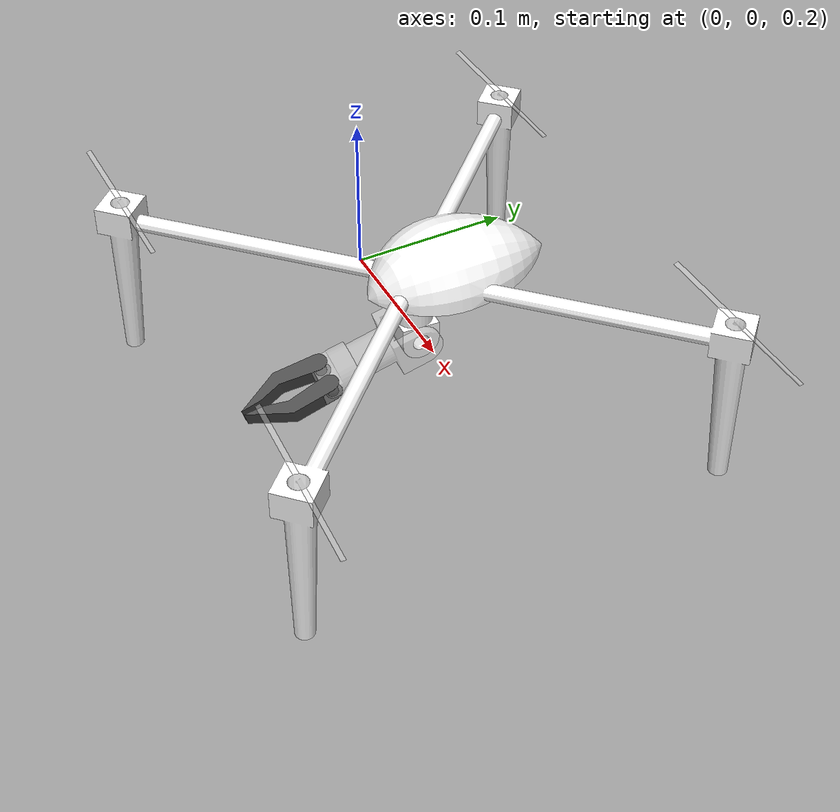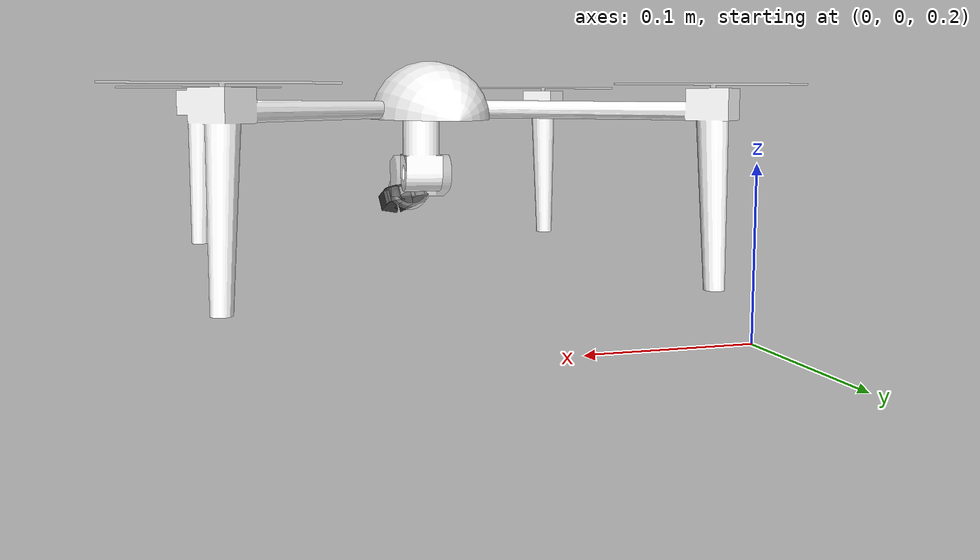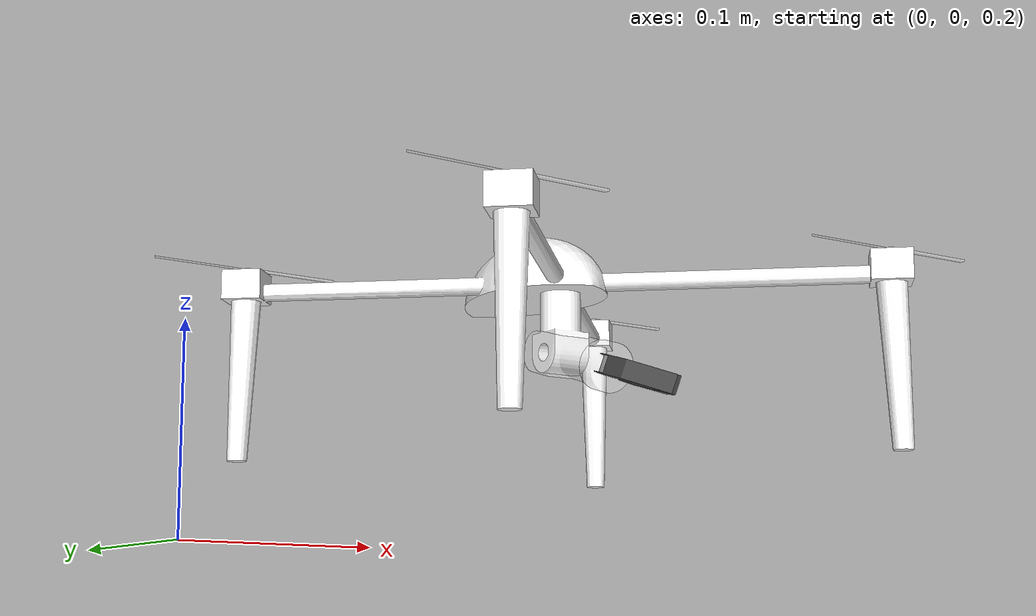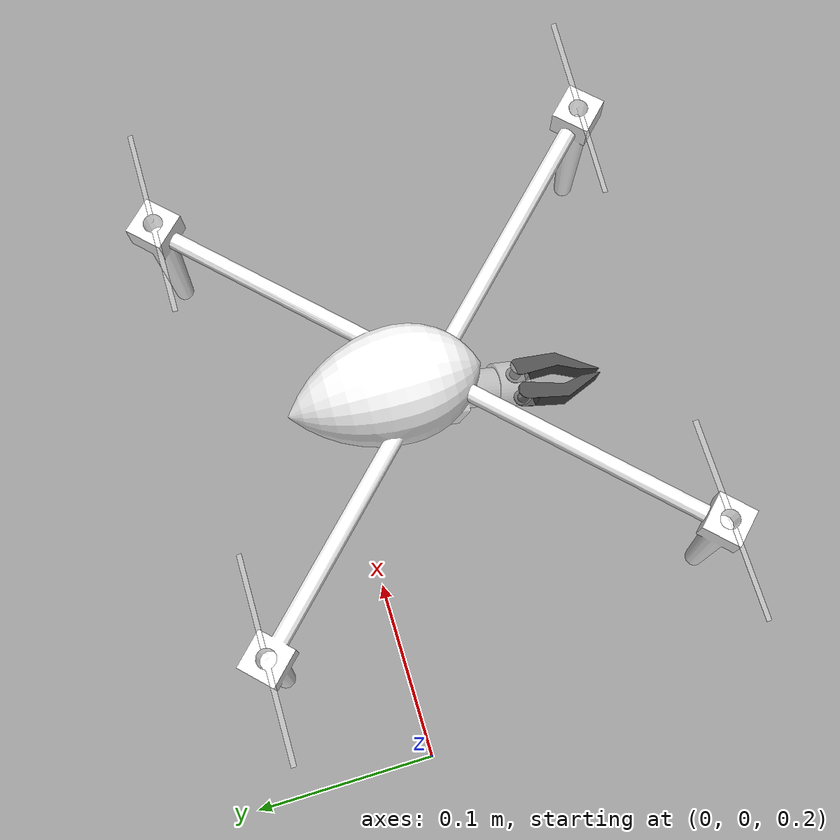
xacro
<?xml version="1.0"?>
<!-- Name your robot here -->
<robot name ="build_quad_bot" xmlns:xacro="http://wiki.ros.org/xacro">

	<xacro:include filename="$(find build_quad_bot)/urdf/build_quad_bot.urdf"/>

	<!--  Gazebo plugin for control here is already added for you -->
	<gazebo>
		<plugin name="gazebo_ros_control" filename="libgazebo_ros_control.so">
			<robotNamespace>/build_quad_bot</robotNamespace>
			<robotSimType>gazebo_ros_control/DefaultRobotHWSim</robotSimType>
			<legacyModeNS>true</legacyModeNS>
		</plugin>
	</gazebo>

</robot>

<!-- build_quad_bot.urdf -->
<robot
  name="build_quad_bot">
  <link name="dummy_link"></link>
    <joint
      name="dummy_joint"
      type="fixed">
      <origin
        xyz="0.0876850301013811 0.140930562484149 0.183057667225338"
        rpy="0 0 0" />
      <parent
        link="dummy_link" />
      <child
        link="chassis" />
    </joint>
  <link
    name="chassis">
    <inertial>
      <origin
        xyz="0.0876850301013811 0.140930562484149 0.183057667225338"
        rpy="0 0 0" />
      <mass
        value="0.173805362488558" />
      <inertia
        ixx="0.00106921691811417"
        ixy="-1.35887791349452E-09"
        ixz="-1.52269854390182E-09"
        iyy="0.00192269791562951"
        iyz="2.09539461739173E-05"
        izz="0.00102907706280709" />
    </inertial>
    <visual>
      <origin
        xyz="0 0 0"
        rpy="0 0 0" />
      <geometry>
        <mesh
          filename="package://build_quad_bot/meshes/chassis.STL" />
      </geometry>
      <material
        name="">
        <color
          rgba="1 1 1 1" />
      </material>
    </visual>
    <collision>
      <origin
        xyz="0 0 0"
        rpy="0 0 0" />
      <geometry>
        <mesh
          filename="package://build_quad_bot/meshes/chassis.STL" />
      </geometry>
    </collision>
  </link>
  <link
    name="front_right_rotor">
    <inertial>
      <origin
        xyz="-1.25975532783151E-09 0.00758907041283063 -1.43444806033344E-09"
        rpy="0 0 0" />
      <mass
        value="0.00164003513463875" />
      <inertia
        ixx="5.40989448385698E-08"
        ixy="1.62773458690548E-14"
        ixz="-1.39327498484125E-09"
        iyy="1.34862675290348E-07"
        iyz="1.20433157779553E-14"
        izz="1.65487904386226E-07" />
    </inertial>
    <visual>
      <origin
        xyz="0 0 0"
        rpy="0 0 0" />
      <geometry>
        <mesh
          filename="package://build_quad_bot/meshes/front_right_rotor.STL" />
      </geometry>
      <material
        name="">
        <color
          rgba="1 1 1 0.32" />
      </material>
    </visual>
    <collision>
      <origin
        xyz="0 0 0"
        rpy="0 0 0" />
      <geometry>
        <mesh
          filename="package://build_quad_bot/meshes/front_right_rotor.STL" />
      </geometry>
    </collision>
  </link>
  <joint
    name="front_right_rotor_joint"
    type="continuous">
    <origin
      xyz="-0.025452 -0.30639 0.14234"
      rpy="1.5708 0 0" />
    <parent
      link="chassis" />
    <child
      link="front_right_rotor" />
    <axis
      xyz="0 1 0" />
    <limit
      effort="1"
      velocity="1000000" />
  </joint>
  <link
    name="front_left_rotor">
    <inertial>
      <origin
        xyz="-1.25975610498763E-09 0.00758907041283038 -1.43444800482229E-09"
        rpy="0 0 0" />
      <mass
        value="0.00164003513463868" />
      <inertia
        ixx="5.40989448385666E-08"
        ixy="1.62773563473984E-14"
        ixz="-1.39327498484251E-09"
        iyy="1.34862675290317E-07"
        iyz="1.20433153891088E-14"
        izz="1.65487904386192E-07" />
    </inertial>
    <visual>
      <origin
        xyz="0 0 0"
        rpy="0 0 0" />
      <geometry>
        <mesh
          filename="package://build_quad_bot/meshes/front_left_rotor.STL" />
      </geometry>
      <material
        name="">
        <color
          rgba="1 1 1 0.32" />
      </material>
    </visual>
    <collision>
      <origin
        xyz="0 0 0"
        rpy="0 0 0" />
      <geometry>
        <mesh
          filename="package://build_quad_bot/meshes/front_left_rotor.STL" />
      </geometry>
    </collision>
  </link>
  <joint
    name="front_left_rotor_joint"
    type="continuous">
    <origin
      xyz="0.20082 -0.30639 0.14234"
      rpy="1.5708 0 -0.049308" />
    <parent
      link="chassis" />
    <child
      link="front_left_rotor" />
    <axis
      xyz="0 1 0" />
    <limit
      effort="1"
      velocity="1000000" />
  </joint>
  <link
    name="rear_left_rotor">
    <inertial>
      <origin
        xyz="-1.25975604947648E-09 0.00758907041283044 -1.43444803257786E-09"
        rpy="0 0 0" />
      <mass
        value="0.0016400351346387" />
      <inertia
        ixx="5.40989448385674E-08"
        ixy="1.62773550818133E-14"
        ixz="-1.39327498484219E-09"
        iyy="1.34862675290325E-07"
        iyz="1.20433154334498E-14"
        izz="1.65487904386201E-07" />
    </inertial>
    <visual>
      <origin
        xyz="0 0 0"
        rpy="0 0 0" />
      <geometry>
        <mesh
          filename="package://build_quad_bot/meshes/rear_left_rotor.STL" />
      </geometry>
      <material
        name="">
        <color
          rgba="1 1 1 0.32" />
      </material>
    </visual>
    <collision>
      <origin
        xyz="0 0 0"
        rpy="0 0 0" />
      <geometry>
        <mesh
          filename="package://build_quad_bot/meshes/rear_left_rotor.STL" />
      </geometry>
    </collision>
  </link>
  <joint
    name="rear_left_rotor_joint"
    type="continuous">
    <origin
      xyz="0.20082 -0.080116 0.14234"
      rpy="1.5708 0 0" />
    <parent
      link="chassis" />
    <child
      link="rear_left_rotor" />
    <axis
      xyz="0 1 0" />
    <limit
      effort="1"
      velocity="1000000" />
  </joint>
  <link
    name="rear_right_rotor">
    <inertial>
      <origin
        xyz="-1.25975594886252E-09 0.00758907041283052 -1.43444803257786E-09"
        rpy="0 0 0" />
      <mass
        value="0.00164003513463871" />
      <inertia
        ixx="5.40989448385681E-08"
        ixy="1.62773533793576E-14"
        ixz="-1.39327498484203E-09"
        iyy="1.34862675290331E-07"
        iyz="1.20433154909612E-14"
        izz="1.65487904386207E-07" />
    </inertial>
    <visual>
      <origin
        xyz="0 0 0"
        rpy="0 0 0" />
      <geometry>
        <mesh
          filename="package://build_quad_bot/meshes/rear_right_rotor.STL" />
      </geometry>
      <material
        name="">
        <color
          rgba="1 1 1 0.32" />
      </material>
    </visual>
    <collision>
      <origin
        xyz="0 0 0"
        rpy="0 0 0" />
      <geometry>
        <mesh
          filename="package://build_quad_bot/meshes/rear_right_rotor.STL" />
      </geometry>
    </collision>
  </link>
  <joint
    name="rear_right_rotor_joint"
    type="continuous">
    <origin
      xyz="-0.025452 -0.080116 0.14234"
      rpy="1.5708 0 0" />
    <parent
      link="chassis" />
    <child
      link="rear_right_rotor" />
    <axis
      xyz="0 1 0" />
    <limit
      effort="1"
      velocity="1000000" />
  </joint>
  <link
    name="arm_link_1">
    <inertial>
      <origin
        xyz="-6.96664947952286E-15 0.0268207413750809 -3.26717819465472E-11"
        rpy="0 0 0" />
      <mass
        value="0.016320901770503" />
      <inertia
        ixx="3.85917948282325E-06"
        ixy="-6.63463056448443E-19"
        ixz="-7.59931755194753E-17"
        iyy="9.82136206172885E-07"
        iyz="-8.56722189368362E-15"
        izz="3.84919336414577E-06" />
    </inertial>
    <visual>
      <origin
        xyz="0 0 0"
        rpy="0 0 0" />
      <geometry>
        <mesh
          filename="package://build_quad_bot/meshes/arm_link_1.STL" />
      </geometry>
      <material
        name="">
        <color
          rgba="1 1 1 1" />
      </material>
    </visual>
    <collision>
      <origin
        xyz="0 0 0"
        rpy="0 0 0" />
      <geometry>
        <mesh
          filename="package://build_quad_bot/meshes/arm_link_1.STL" />
      </geometry>
    </collision>
  </link>
  <joint
    name="arm_joint_1"
    type="revolute">
    <origin
      xyz="0.087685 -0.19325 0.10169"
      rpy="1.5708 0 -0.067967" />
    <parent
      link="chassis" />
    <child
      link="arm_link_1" />
    <axis
      xyz="0 1 0" />
    <limit
      lower="-1"
      upper="1"
      effort="1"
      velocity="10" />
  </joint>
  <link
    name="arm_link_2">
    <inertial>
      <origin
        xyz="2.62121047089892E-10 0.0171389611821341 -1.13826142955631E-10"
        rpy="0 0 0" />
      <mass
        value="0.0164917144290169" />
      <inertia
        ixx="1.3241589794406E-06"
        ixy="3.70791524779322E-16"
        ixz="-1.57164316385075E-21"
        iyy="1.488681538395E-06"
        iyz="1.12267046495263E-15"
        izz="1.99502964721743E-06" />
    </inertial>
    <visual>
      <origin
        xyz="0 0 0"
        rpy="0 0 0" />
      <geometry>
        <mesh
          filename="package://build_quad_bot/meshes/arm_link_2.STL" />
      </geometry>
      <material
        name="">
        <color
          rgba="1 1 1 0.32" />
      </material>
    </visual>
    <collision>
      <origin
        xyz="0 0 0"
        rpy="0 0 0" />
      <geometry>
        <mesh
          filename="package://build_quad_bot/meshes/arm_link_2.STL" />
      </geometry>
    </collision>
  </link>
  <joint
    name="arm_joint_2"
    type="revolute">
    <origin
      xyz="0 0.01 0"
      rpy="1.8591 0 0" />
    <parent
      link="arm_link_1" />
    <child
      link="arm_link_2" />
    <axis
      xyz="1 0 0" />
    <limit
      lower="-1"
      upper="1"
      effort="1"
      velocity="10" />
  </joint>
  <link
    name="arm_link_3">
    <inertial>
      <origin
        xyz="-1.43475342717636E-10 4.2751363560356E-10 -0.00589223823493104"
        rpy="0 0 0" />
      <mass
        value="0.00431995775425361" />
      <inertia
        ixx="2.56959987327941E-07"
        ixy="-5.88728681478884E-15"
        ixz="-7.34693931103341E-15"
        iyy="3.09184579804664E-07"
        iyz="2.80460988043155E-14"
        izz="3.32305583802294E-07" />
    </inertial>
    <visual>
      <origin
        xyz="0 0 0"
        rpy="0 0 0" />
      <geometry>
        <mesh
          filename="package://build_quad_bot/meshes/arm_link_3.STL" />
      </geometry>
      <material
        name="">
        <color
          rgba="1 1 1 0.32" />
      </material>
    </visual>
    <collision>
      <origin
        xyz="0 0 0"
        rpy="0 0 0" />
      <geometry>
        <mesh
          filename="package://build_quad_bot/meshes/arm_link_3.STL" />
      </geometry>
    </collision>
  </link>
  <joint
    name="arm_joint_3"
    type="revolute">
    <origin
      xyz="0 0.037926 0"
      rpy="-1.5708 0.18835 -3.1416" />
    <parent
      link="arm_link_2" />
    <child
      link="arm_link_3" />
    <axis
      xyz="0 0 1" />
    <limit
      lower="-10000"
      upper="10000"
      effort="1"
      velocity="10" />
  </joint>
  <link
    name="left_finger">
    <inertial>
      <origin
        xyz="0.00161872235886462 0.0187141743932983 -1.02999999956888E-06"
        rpy="0 0 0" />
      <mass
        value="0.00261369562305156" />
      <inertia
        ixx="3.64435595797184E-07"
        ixy="8.26652357401017E-09"
        ixz="5.85643873687544E-22"
        iyy="3.68591080594805E-08"
        iyz="-1.21595550045295E-22"
        izz="3.64980509944129E-07" />
    </inertial>
    <visual>
      <origin
        xyz="0 0 0"
        rpy="0 0 0" />
      <geometry>
        <mesh
          filename="package://build_quad_bot/meshes/left_finger.STL" />
      </geometry>
      <material
        name="">
        <color
          rgba="0.298039215686275 0.298039215686275 0.298039215686275 1" />
      </material>
    </visual>
    <collision>
      <origin
        xyz="0 0 0"
        rpy="0 0 0" />
      <geometry>
        <mesh
          filename="package://build_quad_bot/meshes/left_finger.STL" />
      </geometry>
    </collision>
  </link>
  <joint
    name="left_finger_joint"
    type="revolute">
    <origin
      xyz="-0.0073611 0 -0.013203"
      rpy="-1.5708 0.087153 3.1416" />
    <parent
      link="arm_link_3" />
    <child
      link="left_finger" />
    <axis
      xyz="0 0 1" />
    <limit
      lower="-1"
      upper="1"
      effort="1"
      velocity="10" />
  </joint>
  <link
    name="right_finger">
    <inertial>
      <origin
        xyz="0.0016187 0.018714 -1.03E-06"
        rpy="0 0 0" />
      <mass
        value="0.0026137" />
      <inertia
        ixx="3.6444E-07"
        ixy="8.2665E-09"
        ixz="4.4068E-22"
        iyy="3.6859E-08"
        iyz="-9.4299E-23"
        izz="3.6498E-07" />
    </inertial>
    <visual>
      <origin
        xyz="0 0 0"
        rpy="0 0 0" />
      <geometry>
        <mesh
          filename="package://build_quad_bot/meshes/right_finger.STL" />
      </geometry>
      <material
        name="">
        <color
          rgba="0.29804 0.29804 0.29804 1" />
      </material>
    </visual>
    <collision>
      <origin
        xyz="0 0 0"
        rpy="0 0 0" />
      <geometry>
        <mesh
          filename="package://build_quad_bot/meshes/right_finger.STL" />
      </geometry>
    </collision>
  </link>
  <joint
    name="right_finger_joint"
    type="revolute">
    <origin
      xyz="0.0073611 0 -0.013203"
      rpy="-1.5708 0.048185 0" />
    <parent
      link="arm_link_3" />
    <child
      link="right_finger" />
    <axis
      xyz="0 0 1" />
    <limit
      lower="-1"
      upper="1"
      effort="1"
      velocity="10" />
    <mimic
      joint="left_finger_joint"
      multiplier="-1"
      offset="0" />
  </joint>

  <transmission name="front_right_prop">
    <type>transmission_interface/SimpleTransmission</type>
      <joint name="front_right_rotor_joint">
    <hardwareInterface>hardware_interface/VelocityJointInterface</hardwareInterface>
      </joint>
    <actuator name="front_right_motor">
      <mechanicalReduction>20</mechanicalReduction>
    </actuator>
  </transmission>

  <transmission name="front_left_prop">
    <type>transmission_interface/SimpleTransmission</type>
      <joint name="front_left_rotor_joint">
    <hardwareInterface>hardware_interface/VelocityJointInterface</hardwareInterface>
      </joint>
    <actuator name="front_left_motor">
      <mechanicalReduction>20</mechanicalReduction>
    </actuator>
  </transmission>

  <transmission name="rear_right_prop">
    <type>transmission_interface/SimpleTransmission</type>
      <joint name="rear_right_rotor_joint">
    <hardwareInterface>hardware_interface/VelocityJointInterface</hardwareInterface>
      </joint>
    <actuator name="rear_right_motor">
      <mechanicalReduction>20</mechanicalReduction>
    </actuator>
  </transmission>

  <transmission name="rear_left_prop">
    <type>transmission_interface/SimpleTransmission</type>
      <joint name="rear_left_rotor_joint">
    <hardwareInterface>hardware_interface/VelocityJointInterface</hardwareInterface>
      </joint>
    <actuator name="rear_left_motor">
      <mechanicalReduction>20</mechanicalReduction>
    </actuator>
  </transmission>

  <transmission name="arm_body_trans">
    <type>transmission_interface/SimpleTransmission</type>
      <joint name="arm_joint_1">
    <hardwareInterface>hardware_interface/VelocityJointInterface</hardwareInterface>
      </joint>
    <actuator name="arm_body_servo">
      <mechanicalReduction>20</mechanicalReduction>
    </actuator>

  </transmission>
   <transmission name="arm_mid_trans">
    <type>transmission_interface/SimpleTransmission</type>
      <joint name="arm_joint_2">
    <hardwareInterface>hardware_interface/VelocityJointInterface</hardwareInterface>
      </joint>
    <actuator name="arm_body_servo">
      <mechanicalReduction>20</mechanicalReduction>
    </actuator>
  </transmission>

   <transmission name="arm_end_trans">
    <type>transmission_interface/SimpleTransmission</type>
      <joint name="arm_joint_3">
    <hardwareInterface>hardware_interface/VelocityJointInterface</hardwareInterface>
      </joint>
    <actuator name="arm_end_servo">
      <mechanicalReduction>20</mechanicalReduction>
    </actuator>
  </transmission>

  <transmission name="right_finger_trans">
    <type>transmission_interface/SimpleTransmission</type>
      <joint name="right_finger_joint">
    <hardwareInterface>hardware_interface/VelocityJointInterface</hardwareInterface>
      </joint>
    <actuator name="right_finger_servo">
      <mechanicalReduction>20</mechanicalReduction>
    </actuator>
  </transmission>

  <transmission name="left_finger_trans">
    <type>transmission_interface/SimpleTransmission</type>
      <joint name="left_finger_joint">
    <hardwareInterface>hardware_interface/VelocityJointInterface</hardwareInterface>
      </joint>
    <actuator name="left_finger_servo">
      <mechanicalReduction>20</mechanicalReduction>
    </actuator>
  </transmission>
</robot>
